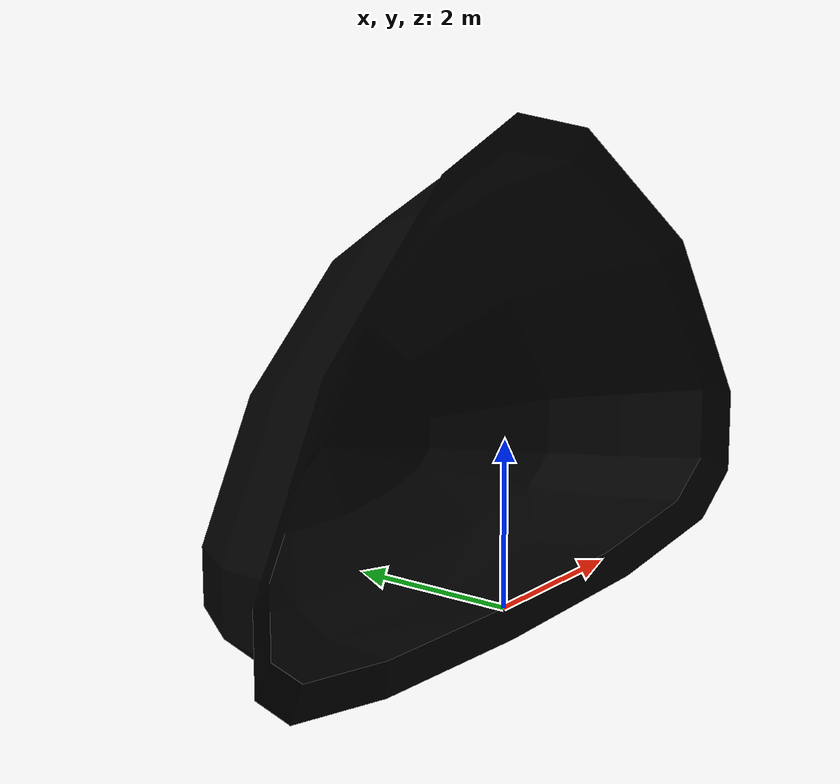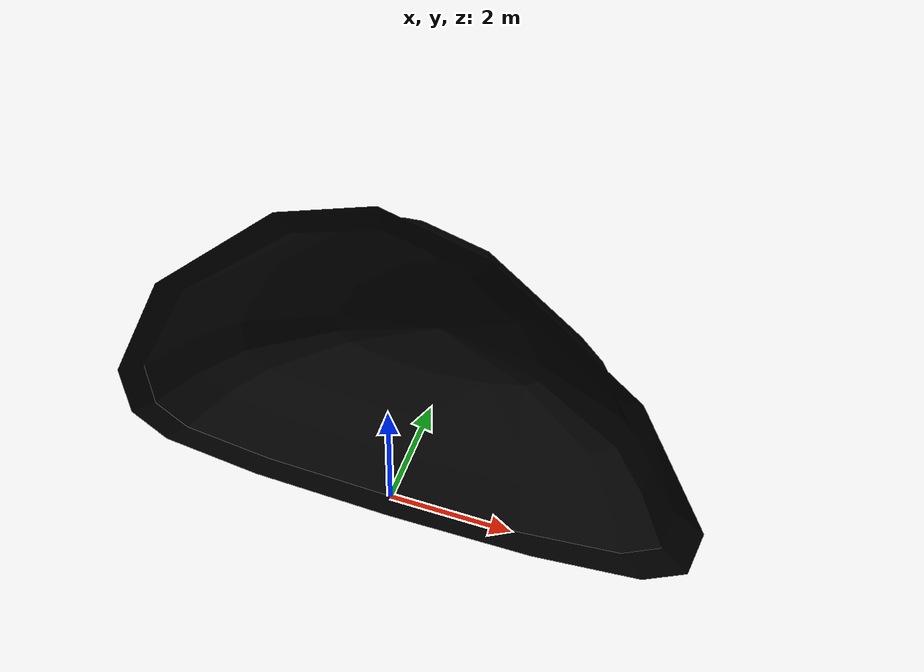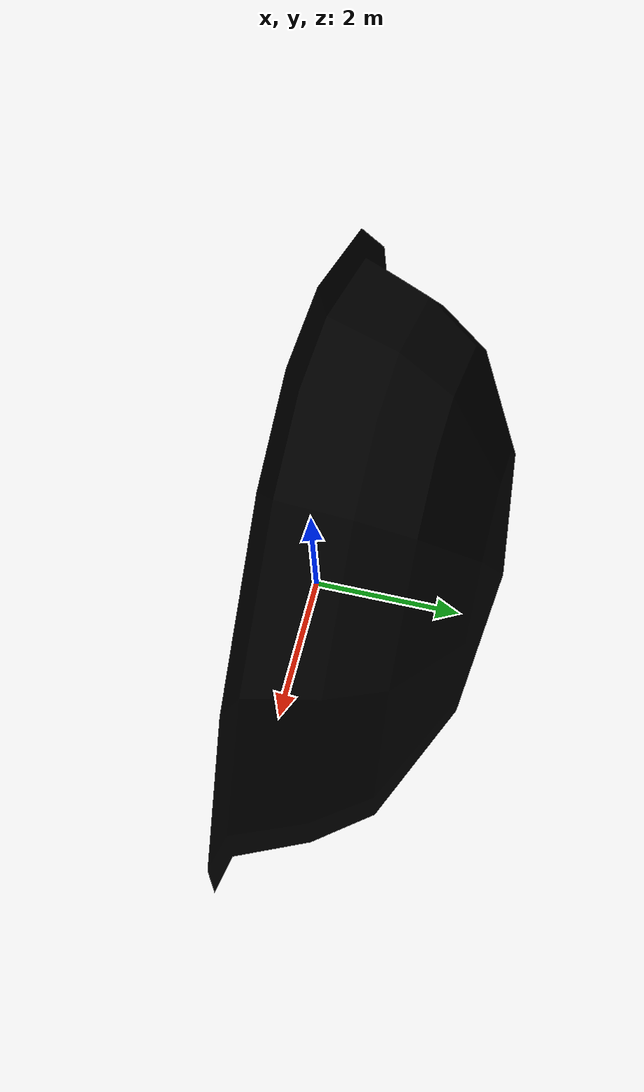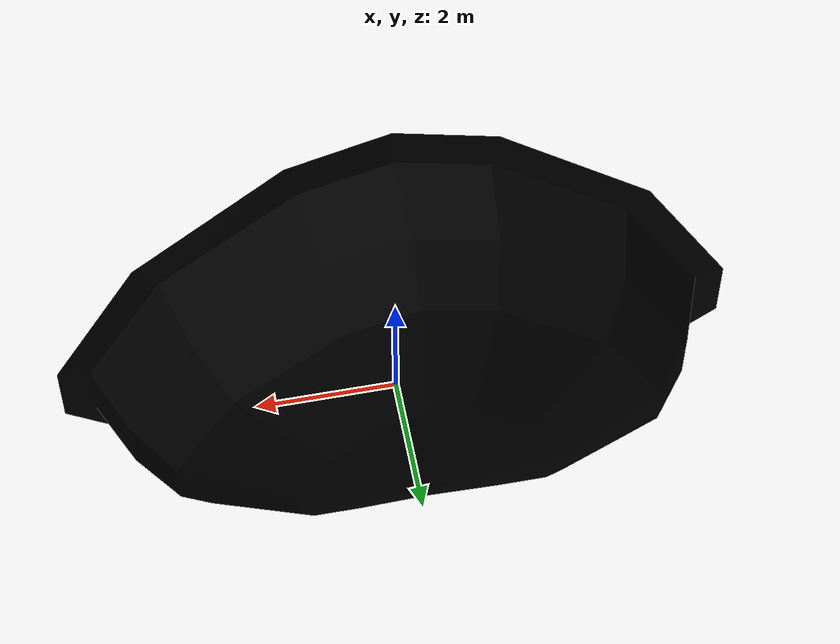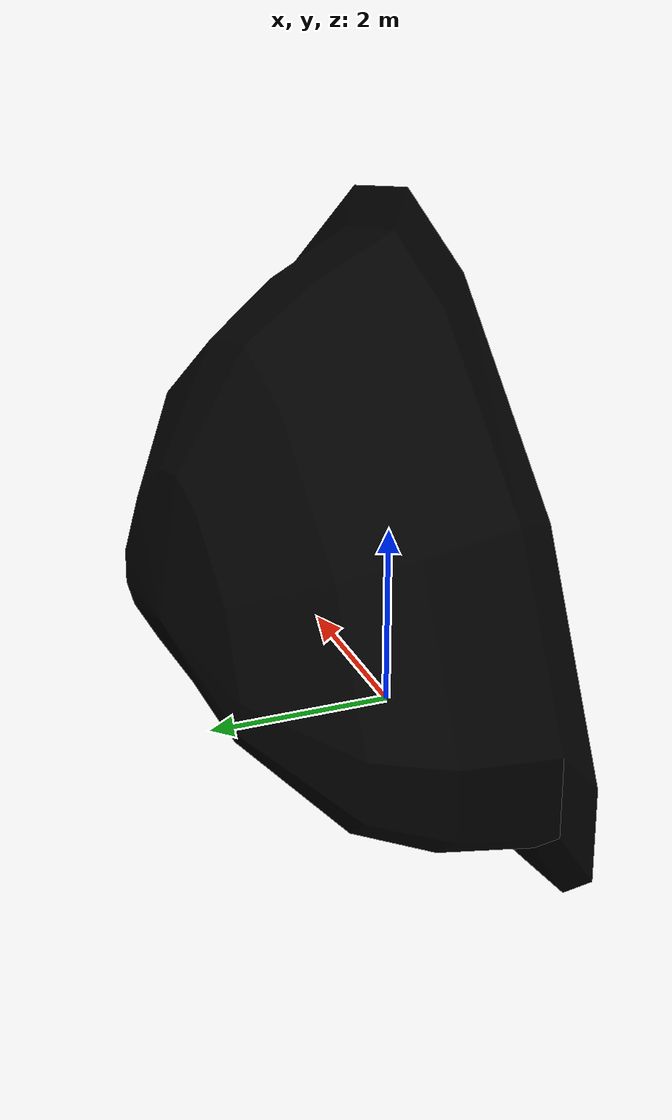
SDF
<sdf version="1.6">
  <model name="Cave Cap Type A">
    <static>true</static>
    <link name="base_link">
      <collision name="collision">
        <pose>0 0 0 0 0 0</pose>
        <geometry>
          <mesh>
            <uri>model://Cave Cap Type A/meshes/cap.dae</uri>
            <scale>1.0 1.0 1.0</scale>
          </mesh>
        </geometry>
      </collision>
      <visual name="Cave Cap Type A_visual">
        <geometry>
          <mesh>
            <uri>model://Cave Cap Type A/meshes/cap.dae</uri>
          </mesh>
        </geometry>
        <material>
          <diffuse>0 0 0 1</diffuse>
          <specular>0 0 0 1</specular>
          <pbr>
            <metal>
              <albedo_map>model://Cave Cap Type A/materials/textures/CaveWall_Albedo.png</albedo_map>
              <normal_map>model://Cave Cap Type A/materials/textures/CaveWall_Normal.png</normal_map>
              <roughness_map>model://Cave Cap Type A/materials/textures/CaveWall_Roughness.png</roughness_map>
            </metal>
          </pbr>

          <script>
            <uri>model://Cave Cap Type A/materials/scripts/</uri>
            <uri>model://Cave Cap Type A/materials/textures/</uri>
            <name>CaveTile/CaveWall_Diffuse</name>
          </script>
        </material>
      </visual>
    </link>
  </model>
</sdf>
